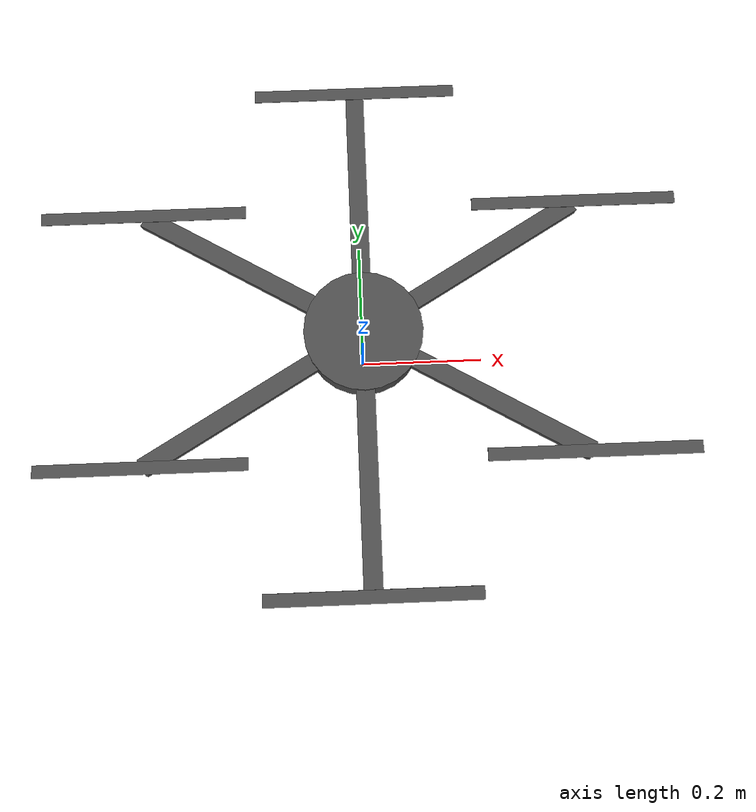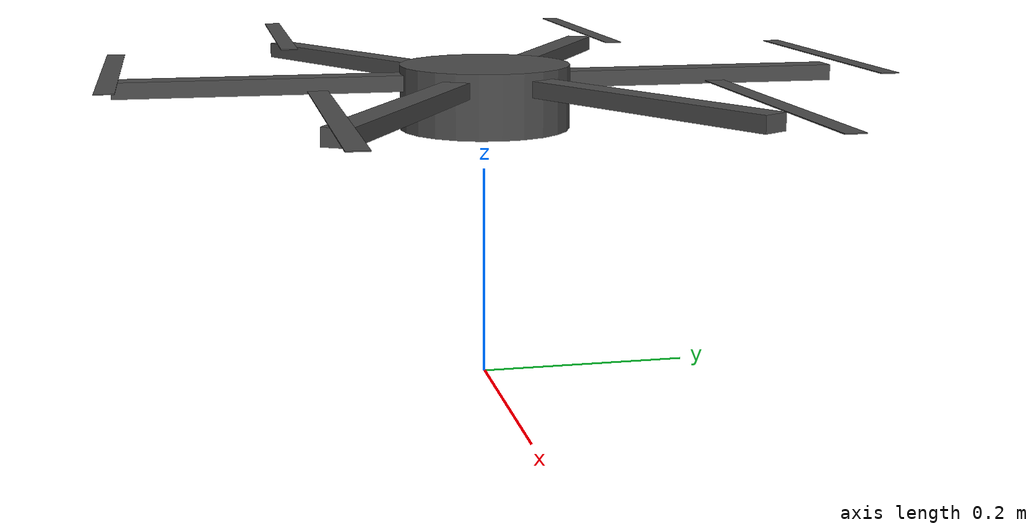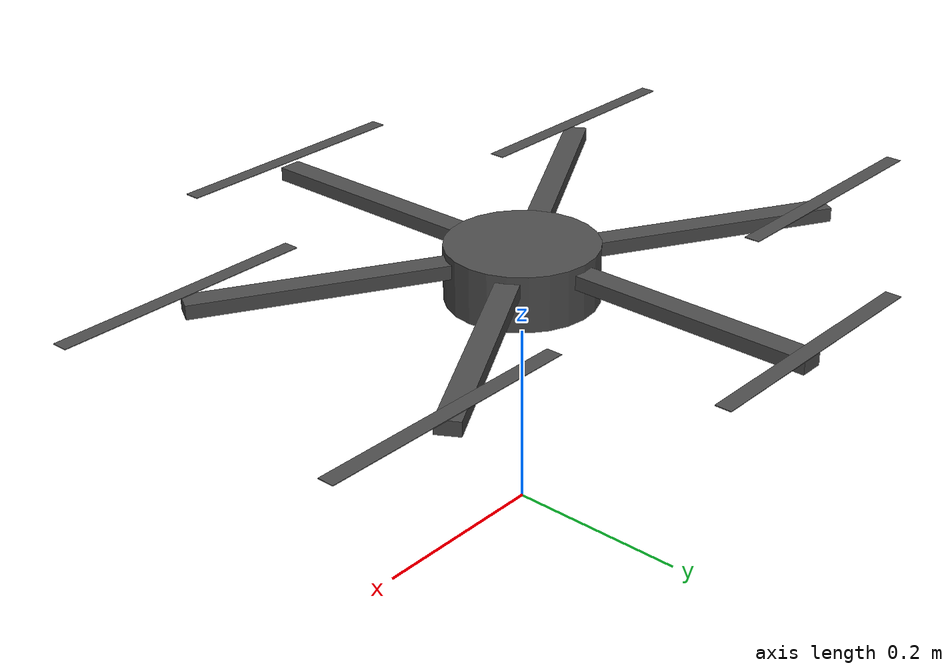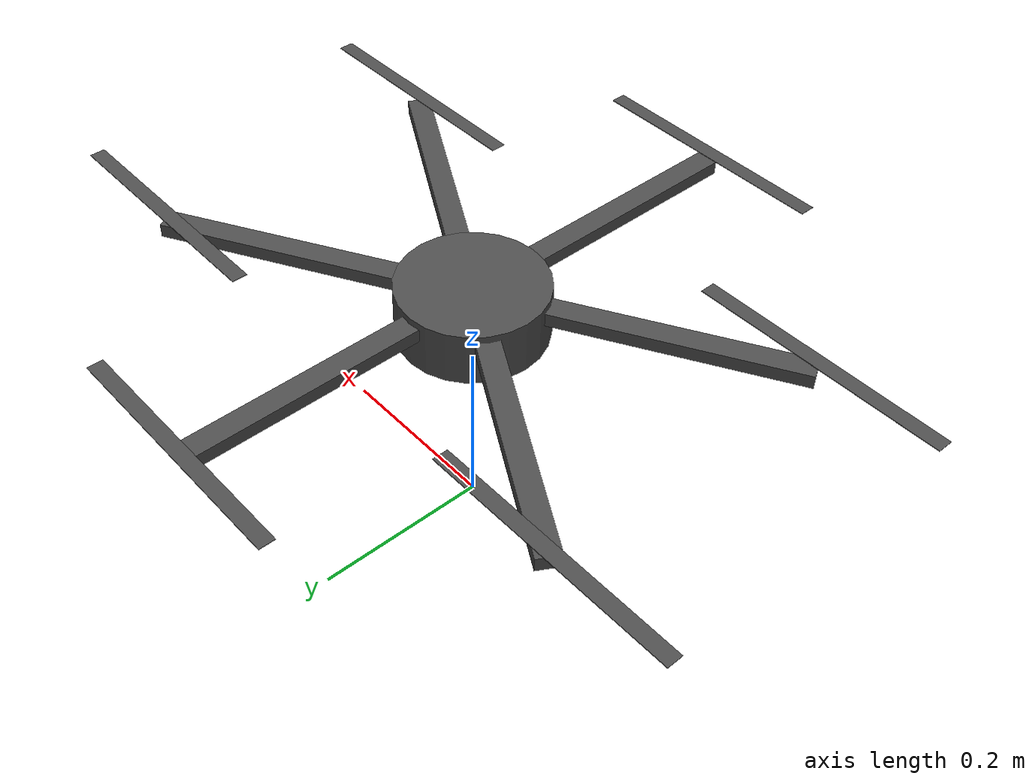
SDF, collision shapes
<?xml version="1.0" encoding="UTF-8"?>
<sdf version='1.9'>
  <model name='hexarotor_x_custom'>
    <include merge='true'>
      <uri>model://hexarotor_x_custom_base</uri>
    </include>

    <!-- motorNumber deve corrispondere a SIM_GZ_EC_FUNCn = 10x -> Motor (x-1)
         nell'airframe 22004_gz_hexarotor_x_custom -->

    <plugin filename="gz-sim-multicopter-motor-model-system"
      name="gz::sim::systems::MulticopterMotorModel">
      <jointName>rotor_0_joint</jointName>
      <linkName>rotor_0</linkName>
      <turningDirection>cw</turningDirection>
      <timeConstantUp>0.0125</timeConstantUp>
      <timeConstantDown>0.025</timeConstantDown>
      <maxRotVelocity>1000.0</maxRotVelocity>
      <motorConstant>8.54858e-06</motorConstant>
      <momentConstant>0.016</momentConstant>
      <commandSubTopic>command/motor_speed</commandSubTopic>
      <motorNumber>0</motorNumber>
      <rotorDragCoefficient>8.06428e-05</rotorDragCoefficient>
      <rollingMomentCoefficient>1e-06</rollingMomentCoefficient>
      <rotorVelocitySlowdownSim>10</rotorVelocitySlowdownSim>
      <motorType>velocity</motorType>
    </plugin>

    <plugin filename="gz-sim-multicopter-motor-model-system"
      name="gz::sim::systems::MulticopterMotorModel">
      <jointName>rotor_1_joint</jointName>
      <linkName>rotor_1</linkName>
      <turningDirection>ccw</turningDirection>
      <timeConstantUp>0.0125</timeConstantUp>
      <timeConstantDown>0.025</timeConstantDown>
      <maxRotVelocity>1000.0</maxRotVelocity>
      <motorConstant>8.54858e-06</motorConstant>
      <momentConstant>0.016</momentConstant>
      <commandSubTopic>command/motor_speed</commandSubTopic>
      <motorNumber>1</motorNumber>
      <rotorDragCoefficient>8.06428e-05</rotorDragCoefficient>
      <rollingMomentCoefficient>1e-06</rollingMomentCoefficient>
      <rotorVelocitySlowdownSim>10</rotorVelocitySlowdownSim>
      <motorType>velocity</motorType>
    </plugin>

    <plugin filename="gz-sim-multicopter-motor-model-system"
      name="gz::sim::systems::MulticopterMotorModel">
      <jointName>rotor_2_joint</jointName>
      <linkName>rotor_2</linkName>
      <turningDirection>cw</turningDirection>
      <timeConstantUp>0.0125</timeConstantUp>
      <timeConstantDown>0.025</timeConstantDown>
      <maxRotVelocity>1000.0</maxRotVelocity>
      <motorConstant>8.54858e-06</motorConstant>
      <momentConstant>0.016</momentConstant>
      <commandSubTopic>command/motor_speed</commandSubTopic>
      <motorNumber>2</motorNumber>
      <rotorDragCoefficient>8.06428e-05</rotorDragCoefficient>
      <rollingMomentCoefficient>1e-06</rollingMomentCoefficient>
      <rotorVelocitySlowdownSim>10</rotorVelocitySlowdownSim>
      <motorType>velocity</motorType>
    </plugin>

    <plugin filename="gz-sim-multicopter-motor-model-system"
      name="gz::sim::systems::MulticopterMotorModel">
      <jointName>rotor_3_joint</jointName>
      <linkName>rotor_3</linkName>
      <turningDirection>ccw</turningDirection>
      <timeConstantUp>0.0125</timeConstantUp>
      <timeConstantDown>0.025</timeConstantDown>
      <maxRotVelocity>1000.0</maxRotVelocity>
      <motorConstant>8.54858e-06</motorConstant>
      <momentConstant>0.016</momentConstant>
      <commandSubTopic>command/motor_speed</commandSubTopic>
      <motorNumber>3</motorNumber>
      <rotorDragCoefficient>8.06428e-05</rotorDragCoefficient>
      <rollingMomentCoefficient>1e-06</rollingMomentCoefficient>
      <rotorVelocitySlowdownSim>10</rotorVelocitySlowdownSim>
      <motorType>velocity</motorType>
    </plugin>

    <plugin filename="gz-sim-multicopter-motor-model-system"
      name="gz::sim::systems::MulticopterMotorModel">
      <jointName>rotor_4_joint</jointName>
      <linkName>rotor_4</linkName>
      <turningDirection>ccw</turningDirection>
      <timeConstantUp>0.0125</timeConstantUp>
      <timeConstantDown>0.025</timeConstantDown>
      <maxRotVelocity>1000.0</maxRotVelocity>
      <motorConstant>8.54858e-06</motorConstant>
      <momentConstant>0.016</momentConstant>
      <commandSubTopic>command/motor_speed</commandSubTopic>
      <motorNumber>4</motorNumber>
      <rotorDragCoefficient>8.06428e-05</rotorDragCoefficient>
      <rollingMomentCoefficient>1e-06</rollingMomentCoefficient>
      <rotorVelocitySlowdownSim>10</rotorVelocitySlowdownSim>
      <motorType>velocity</motorType>
    </plugin>

    <plugin filename="gz-sim-multicopter-motor-model-system"
      name="gz::sim::systems::MulticopterMotorModel">
      <jointName>rotor_5_joint</jointName>
      <linkName>rotor_5</linkName>
      <turningDirection>cw</turningDirection>
      <timeConstantUp>0.0125</timeConstantUp>
      <timeConstantDown>0.025</timeConstantDown>
      <maxRotVelocity>1000.0</maxRotVelocity>
      <motorConstant>8.54858e-06</motorConstant>
      <momentConstant>0.016</momentConstant>
      <commandSubTopic>command/motor_speed</commandSubTopic>
      <motorNumber>5</motorNumber>
      <rotorDragCoefficient>8.06428e-05</rotorDragCoefficient>
      <rollingMomentCoefficient>1e-06</rollingMomentCoefficient>
      <rotorVelocitySlowdownSim>10</rotorVelocitySlowdownSim>
      <motorType>velocity</motorType>
    </plugin>

  </model>
</sdf>

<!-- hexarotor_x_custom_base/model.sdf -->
<sdf version='1.9'>
  <model name='hexarotor_x_custom_base'>
    <pose>0 0 .24 0 0 0</pose>
    <self_collide>false</self_collide>
    <static>false</static>
    <link name="base_link">
      <inertial>
        <!-- PLACEHOLDER: massa/inerzia dell'x500 (quad), da sostituire con i
             valori reali del FY680 dal tuo modello LaTeX/Simulink -->
        <mass>2.0</mass>
        <inertia>
          <ixx>0.02166666666666667</ixx>
          <ixy>0</ixy>
          <ixz>0</ixz>
          <iyy>0.02166666666666667</iyy>
          <iyz>0</iyz>
          <izz>0.04000000000000001</izz>
        </inertia>
      </inertial>
      <gravity>true</gravity>
      <velocity_decay />
      <visual name="hub_visual">
        <pose>0 0 .03 0 0 0</pose>
        <geometry>
          <cylinder>
            <radius>0.08</radius>
            <length>0.06</length>
          </cylinder>
        </geometry>
        <material>
          <script>
            <name>Gazebo/DarkGrey</name>
            <uri>file://media/materials/scripts/gazebo.material</uri>
          </script>
        </material>
      </visual>
      <collision name="hub_collision">
        <pose>0 0 .03 0 0 0</pose>
        <geometry>
          <cylinder>
            <radius>0.08</radius>
            <length>0.06</length>
          </cylinder>
        </geometry>
        <surface>
          <contact>
            <ode>
              <min_depth>0.001</min_depth>
              <max_vel>0</max_vel>
            </ode>
          </contact>
          <friction>
            <ode />
          </friction>
        </surface>
      </collision>

      <!-- braccio -> rotor_0: centro (0,0) - punta (0, -0.34) -->
      <visual name="arm_0_visual">
        <pose>0 -0.17 .045 0 0 -1.570796</pose>
        <geometry>
          <box>
            <size>0.34 0.025 0.015</size>
          </box>
        </geometry>
        <material>
          <script>
            <name>Gazebo/DarkGrey</name>
            <uri>file://media/materials/scripts/gazebo.material</uri>
          </script>
        </material>
      </visual>
      <collision name="arm_0_collision">
        <pose>0 -0.17 .045 0 0 -1.570796</pose>
        <geometry>
          <box>
            <size>0.34 0.025 0.015</size>
          </box>
        </geometry>
        <surface>
          <contact>
            <ode>
              <min_depth>0.001</min_depth>
              <max_vel>0</max_vel>
            </ode>
          </contact>
          <friction>
            <ode />
          </friction>
        </surface>
      </collision>

      <!-- braccio -> rotor_1: centro (0,0) - punta (0, 0.34) -->
      <visual name="arm_1_visual">
        <pose>0 0.17 .045 0 0 1.570796</pose>
        <geometry>
          <box>
            <size>0.34 0.025 0.015</size>
          </box>
        </geometry>
        <material>
          <script>
            <name>Gazebo/DarkGrey</name>
            <uri>file://media/materials/scripts/gazebo.material</uri>
          </script>
        </material>
      </visual>
      <collision name="arm_1_collision">
        <pose>0 0.17 .045 0 0 1.570796</pose>
        <geometry>
          <box>
            <size>0.34 0.025 0.015</size>
          </box>
        </geometry>
        <surface>
          <contact>
            <ode>
              <min_depth>0.001</min_depth>
              <max_vel>0</max_vel>
            </ode>
          </contact>
          <friction>
            <ode />
          </friction>
        </surface>
      </collision>

      <!-- braccio -> rotor_2: centro (0,0) - punta (0.2944, 0.17) -->
      <visual name="arm_2_visual">
        <pose>0.1472 0.085 .045 0 0 0.523599</pose>
        <geometry>
          <box>
            <size>0.34 0.025 0.015</size>
          </box>
        </geometry>
        <material>
          <script>
            <name>Gazebo/DarkGrey</name>
            <uri>file://media/materials/scripts/gazebo.material</uri>
          </script>
        </material>
      </visual>
      <collision name="arm_2_collision">
        <pose>0.1472 0.085 .045 0 0 0.523599</pose>
        <geometry>
          <box>
            <size>0.34 0.025 0.015</size>
          </box>
        </geometry>
        <surface>
          <contact>
            <ode>
              <min_depth>0.001</min_depth>
              <max_vel>0</max_vel>
            </ode>
          </contact>
          <friction>
            <ode />
          </friction>
        </surface>
      </collision>

      <!-- braccio -> rotor_3: centro (0,0) - punta (-0.2944, -0.17) -->
      <visual name="arm_3_visual">
        <pose>-0.1472 -0.085 .045 0 0 -2.617994</pose>
        <geometry>
          <box>
            <size>0.34 0.025 0.015</size>
          </box>
        </geometry>
        <material>
          <script>
            <name>Gazebo/DarkGrey</name>
            <uri>file://media/materials/scripts/gazebo.material</uri>
          </script>
        </material>
      </visual>
      <collision name="arm_3_collision">
        <pose>-0.1472 -0.085 .045 0 0 -2.617994</pose>
        <geometry>
          <box>
            <size>0.34 0.025 0.015</size>
          </box>
        </geometry>
        <surface>
          <contact>
            <ode>
              <min_depth>0.001</min_depth>
              <max_vel>0</max_vel>
            </ode>
          </contact>
          <friction>
            <ode />
          </friction>
        </surface>
      </collision>

      <!-- braccio -> rotor_4: centro (0,0) - punta (0.2944, -0.17) -->
      <visual name="arm_4_visual">
        <pose>0.1472 -0.085 .045 0 0 -0.523599</pose>
        <geometry>
          <box>
            <size>0.34 0.025 0.015</size>
          </box>
        </geometry>
        <material>
          <script>
            <name>Gazebo/DarkGrey</name>
            <uri>file://media/materials/scripts/gazebo.material</uri>
          </script>
        </material>
      </visual>
      <collision name="arm_4_collision">
        <pose>0.1472 -0.085 .045 0 0 -0.523599</pose>
        <geometry>
          <box>
            <size>0.34 0.025 0.015</size>
          </box>
        </geometry>
        <surface>
          <contact>
            <ode>
              <min_depth>0.001</min_depth>
              <max_vel>0</max_vel>
            </ode>
          </contact>
          <friction>
            <ode />
          </friction>
        </surface>
      </collision>

      <!-- braccio -> rotor_5: centro (0,0) - punta (-0.2944, 0.17) -->
      <visual name="arm_5_visual">
        <pose>-0.1472 0.085 .045 0 0 2.617994</pose>
        <geometry>
          <box>
            <size>0.34 0.025 0.015</size>
          </box>
        </geometry>
        <material>
          <script>
            <name>Gazebo/DarkGrey</name>
            <uri>file://media/materials/scripts/gazebo.material</uri>
          </script>
        </material>
      </visual>
      <collision name="arm_5_collision">
        <pose>-0.1472 0.085 .045 0 0 2.617994</pose>
        <geometry>
          <box>
            <size>0.34 0.025 0.015</size>
          </box>
        </geometry>
        <surface>
          <contact>
            <ode>
              <min_depth>0.001</min_depth>
              <max_vel>0</max_vel>
            </ode>
          </contact>
          <friction>
            <ode />
          </friction>
        </surface>
      </collision>
      <sensor name="air_pressure_sensor" type="air_pressure">
        <gz_frame_id>base_link</gz_frame_id>
        <always_on>1</always_on>
        <update_rate>50</update_rate>
        <air_pressure>
          <pressure>
            <noise type="gaussian">
              <mean>0</mean>
              <stddev>3</stddev>
            </noise>
          </pressure>
        </air_pressure>
      </sensor>
      <sensor name="magnetometer_sensor" type="magnetometer">
        <gz_frame_id>base_link</gz_frame_id>
        <always_on>1</always_on>
        <update_rate>100</update_rate>
        <magnetometer>
          <x>
            <noise type="gaussian">
              <stddev>0.0001</stddev>
            </noise>
          </x>
          <y>
            <noise type="gaussian">
              <stddev>0.0001</stddev>
            </noise>
          </y>
          <z>
            <noise type="gaussian">
              <stddev>0.0001</stddev>
            </noise>
          </z>
        </magnetometer>
      </sensor>
      <sensor name="imu_sensor" type="imu">
        <gz_frame_id>base_link</gz_frame_id>
        <always_on>1</always_on>
        <update_rate>250</update_rate>
        <imu>
          <angular_velocity>
            <x>
              <noise type="gaussian">
                <mean>0.0</mean>
                <stddev>0.0008726646</stddev>
              </noise>
            </x>
            <y>
              <noise type="gaussian">
                <mean>0.0</mean>
                <stddev>0.0008726646</stddev>
              </noise>
            </y>
            <z>
              <noise type="gaussian">
                <mean>0.0</mean>
                <stddev>0.0008726646</stddev>
              </noise>
            </z>
          </angular_velocity>
          <linear_acceleration>
            <x>
              <noise type="gaussian">
                <mean>0.0</mean>
                <stddev>0.00637</stddev>
              </noise>
            </x>
            <y>
              <noise type="gaussian">
                <mean>0.0</mean>
                <stddev>0.00637</stddev>
              </noise>
            </y>
            <z>
              <noise type="gaussian">
                <mean>0.0</mean>
                <stddev>0.00686</stddev>
              </noise>
            </z>
          </linear_acceleration>
        </imu>
      </sensor>
      <sensor name="navsat_sensor" type="navsat">
        <gz_frame_id>base_link</gz_frame_id>
        <always_on>1</always_on>
        <update_rate>30</update_rate>
      </sensor>
    </link>

    <!-- rotor_0: PX4 (0, 0.34), KM<0 -> CW -->
    <link name="rotor_0">
      <gravity>true</gravity>
      <self_collide>false</self_collide>
      <velocity_decay />
      <pose>0 -0.34 0.06 0 0 0</pose>
      <inertial>
        <mass>0.016076923076923075</mass>
        <inertia>
          <ixx>3.8464910483993325e-07</ixx>
          <iyy>2.6115851691700804e-05</iyy>
          <izz>2.649858234714004e-05</izz>
        </inertia>
      </inertial>
      <visual name="rotor_0_visual">
        <pose>-0.022 -0.14638461538461536 -0.016 0 0 0</pose>
        <geometry>
          <mesh>
            <scale>0.8461538461538461 0.8461538461538461 0.8461538461538461</scale>
            <uri>model://hexarotor_x_custom_base/meshes/1345_prop_cw.stl</uri>
          </mesh>
        </geometry>
        <material>
          <script>
            <name>Gazebo/DarkGrey</name>
            <uri>file://media/materials/scripts/gazebo.material</uri>
          </script>
        </material>
      </visual>
      <visual name="rotor_0_visual_motor_bell">
        <pose>0 0 -.032 0 0 0</pose>
        <geometry>
          <mesh>
            <scale>1 1 1</scale>
            <uri>model://hexarotor_x_custom_base/meshes/5010Bell.dae</uri>
          </mesh>
        </geometry>
      </visual>
      <collision name="rotor_0_collision">
        <pose>0 0 0 0 0 0 </pose>
        <geometry>
          <box>
            <size>0.2792307692307692 0.016923076923076923 0.0008461538461538462</size>
          </box>
        </geometry>
        <surface>
          <contact>
            <ode>
              <min_depth>0.001</min_depth>
              <max_vel>0</max_vel>
            </ode>
          </contact>
          <friction>
            <ode />
          </friction>
        </surface>
      </collision>
    </link>
    <joint name="rotor_0_joint" type="revolute">
      <parent>base_link</parent>
      <child>rotor_0</child>
      <axis>
        <xyz>0 0 1</xyz>
        <limit>
          <lower>-1e+16</lower>
          <upper>1e+16</upper>
        </limit>
        <dynamics>
          <spring_reference>0</spring_reference>
          <spring_stiffness>0</spring_stiffness>
        </dynamics>
      </axis>
    </joint>

    <!-- rotor_1: PX4 (0, -0.34), KM>0 -> CCW -->
    <link name="rotor_1">
      <gravity>true</gravity>
      <self_collide>false</self_collide>
      <velocity_decay />
      <pose>0 0.34 0.06 0 0 0</pose>
      <inertial>
        <mass>0.016076923076923075</mass>
        <inertia>
          <ixx>3.8464910483993325e-07</ixx>
          <iyy>2.6115851691700804e-05</iyy>
          <izz>2.649858234714004e-05</izz>
        </inertia>
      </inertial>
      <visual name="rotor_1_visual">
        <pose>-0.022 -0.14638461538461536 -0.016 0 0 0</pose>
        <geometry>
          <mesh>
            <scale>0.8461538461538461 0.8461538461538461 0.8461538461538461</scale>
            <uri>model://hexarotor_x_custom_base/meshes/1345_prop_ccw.stl</uri>
          </mesh>
        </geometry>
        <material>
          <script>
            <name>Gazebo/DarkGrey</name>
            <uri>file://media/materials/scripts/gazebo.material</uri>
          </script>
        </material>
      </visual>
      <visual name="rotor_1_visual_motor_bell">
        <pose>0 0 -.032 0 0 0</pose>
        <geometry>
          <mesh>
            <scale>1 1 1</scale>
            <uri>model://hexarotor_x_custom_base/meshes/5010Bell.dae</uri>
          </mesh>
        </geometry>
      </visual>
      <collision name="rotor_1_collision">
        <pose>0 0 0 0 0 0 </pose>
        <geometry>
          <box>
            <size>0.2792307692307692 0.016923076923076923 0.0008461538461538462</size>
          </box>
        </geometry>
        <surface>
          <contact>
            <ode>
              <min_depth>0.001</min_depth>
              <max_vel>0</max_vel>
            </ode>
          </contact>
          <friction>
            <ode />
          </friction>
        </surface>
      </collision>
    </link>
    <joint name="rotor_1_joint" type="revolute">
      <parent>base_link</parent>
      <child>rotor_1</child>
      <axis>
        <xyz>0 0 1</xyz>
        <limit>
          <lower>-1e+16</lower>
          <upper>1e+16</upper>
        </limit>
        <dynamics>
          <spring_reference>0</spring_reference>
          <spring_stiffness>0</spring_stiffness>
        </dynamics>
      </axis>
    </joint>

    <!-- rotor_2: PX4 (0.2944, -0.17), KM<0 -> CW -->
    <link name="rotor_2">
      <gravity>true</gravity>
      <self_collide>false</self_collide>
      <velocity_decay />
      <pose>0.2944 0.17 0.06 0 0 0</pose>
      <inertial>
        <mass>0.016076923076923075</mass>
        <inertia>
          <ixx>3.8464910483993325e-07</ixx>
          <iyy>2.6115851691700804e-05</iyy>
          <izz>2.649858234714004e-05</izz>
        </inertia>
      </inertial>
      <visual name="rotor_2_visual">
        <pose>-0.022 -0.14638461538461536 -0.016 0 0 0</pose>
        <geometry>
          <mesh>
            <scale>0.8461538461538461 0.8461538461538461 0.8461538461538461</scale>
            <uri>model://hexarotor_x_custom_base/meshes/1345_prop_cw.stl</uri>
          </mesh>
        </geometry>
        <material>
          <script>
            <name>Gazebo/DarkGrey</name>
            <uri>file://media/materials/scripts/gazebo.material</uri>
          </script>
        </material>
      </visual>
      <visual name="rotor_2_visual_motor_bell">
        <pose>0 0 -.032 0 0 0</pose>
        <geometry>
          <mesh>
            <scale>1 1 1</scale>
            <uri>model://hexarotor_x_custom_base/meshes/5010Bell.dae</uri>
          </mesh>
        </geometry>
      </visual>
      <collision name="rotor_2_collision">
        <pose>0 0 0 0 0 0 </pose>
        <geometry>
          <box>
            <size>0.2792307692307692 0.016923076923076923 0.0008461538461538462</size>
          </box>
        </geometry>
        <surface>
          <contact>
            <ode>
              <min_depth>0.001</min_depth>
              <max_vel>0</max_vel>
            </ode>
          </contact>
          <friction>
            <ode />
          </friction>
        </surface>
      </collision>
    </link>
    <joint name="rotor_2_joint" type="revolute">
      <parent>base_link</parent>
      <child>rotor_2</child>
      <axis>
        <xyz>0 0 1</xyz>
        <limit>
          <lower>-1e+16</lower>
          <upper>1e+16</upper>
        </limit>
        <dynamics>
          <spring_reference>0</spring_reference>
          <spring_stiffness>0</spring_stiffness>
        </dynamics>
      </axis>
    </joint>

    <!-- rotor_3: PX4 (-0.2944, 0.17), KM>0 -> CCW -->
    <link name="rotor_3">
      <gravity>true</gravity>
      <self_collide>false</self_collide>
      <velocity_decay />
      <pose>-0.2944 -0.17 0.06 0 0 0</pose>
      <inertial>
        <mass>0.016076923076923075</mass>
        <inertia>
          <ixx>3.8464910483993325e-07</ixx>
          <iyy>2.6115851691700804e-05</iyy>
          <izz>2.649858234714004e-05</izz>
        </inertia>
      </inertial>
      <visual name="rotor_3_visual">
        <pose>-0.022 -0.14638461538461536 -0.016 0 0 0</pose>
        <geometry>
          <mesh>
            <scale>0.8461538461538461 0.8461538461538461 0.8461538461538461</scale>
            <uri>model://hexarotor_x_custom_base/meshes/1345_prop_ccw.stl</uri>
          </mesh>
        </geometry>
        <material>
          <script>
            <name>Gazebo/DarkGrey</name>
            <uri>file://media/materials/scripts/gazebo.material</uri>
          </script>
        </material>
      </visual>
      <visual name="rotor_3_visual_motor_bell">
        <pose>0 0 -.032 0 0 0</pose>
        <geometry>
          <mesh>
            <scale>1 1 1</scale>
            <uri>model://hexarotor_x_custom_base/meshes/5010Bell.dae</uri>
          </mesh>
        </geometry>
      </visual>
      <collision name="rotor_3_collision">
        <pose>0 0 0 0 0 0 </pose>
        <geometry>
          <box>
            <size>0.2792307692307692 0.016923076923076923 0.0008461538461538462</size>
          </box>
        </geometry>
        <surface>
          <contact>
            <ode>
              <min_depth>0.001</min_depth>
              <max_vel>0</max_vel>
            </ode>
          </contact>
          <friction>
            <ode />
          </friction>
        </surface>
      </collision>
    </link>
    <joint name="rotor_3_joint" type="revolute">
      <parent>base_link</parent>
      <child>rotor_3</child>
      <axis>
        <xyz>0 0 1</xyz>
        <limit>
          <lower>-1e+16</lower>
          <upper>1e+16</upper>
        </limit>
        <dynamics>
          <spring_reference>0</spring_reference>
          <spring_stiffness>0</spring_stiffness>
        </dynamics>
      </axis>
    </joint>

    <!-- rotor_4: PX4 (0.2944, 0.17), KM>0 -> CCW -->
    <link name="rotor_4">
      <gravity>true</gravity>
      <self_collide>false</self_collide>
      <velocity_decay />
      <pose>0.2944 -0.17 0.06 0 0 0</pose>
      <inertial>
        <mass>0.016076923076923075</mass>
        <inertia>
          <ixx>3.8464910483993325e-07</ixx>
          <iyy>2.6115851691700804e-05</iyy>
          <izz>2.649858234714004e-05</izz>
        </inertia>
      </inertial>
      <visual name="rotor_4_visual">
        <pose>-0.022 -0.14638461538461536 -0.016 0 0 0</pose>
        <geometry>
          <mesh>
            <scale>0.8461538461538461 0.8461538461538461 0.8461538461538461</scale>
            <uri>model://hexarotor_x_custom_base/meshes/1345_prop_ccw.stl</uri>
          </mesh>
        </geometry>
        <material>
          <script>
            <name>Gazebo/DarkGrey</name>
            <uri>file://media/materials/scripts/gazebo.material</uri>
          </script>
        </material>
      </visual>
      <visual name="rotor_4_visual_motor_bell">
        <pose>0 0 -.032 0 0 0</pose>
        <geometry>
          <mesh>
            <scale>1 1 1</scale>
            <uri>model://hexarotor_x_custom_base/meshes/5010Bell.dae</uri>
          </mesh>
        </geometry>
      </visual>
      <collision name="rotor_4_collision">
        <pose>0 0 0 0 0 0 </pose>
        <geometry>
          <box>
            <size>0.2792307692307692 0.016923076923076923 0.0008461538461538462</size>
          </box>
        </geometry>
        <surface>
          <contact>
            <ode>
              <min_depth>0.001</min_depth>
              <max_vel>0</max_vel>
            </ode>
          </contact>
          <friction>
            <ode />
          </friction>
        </surface>
      </collision>
    </link>
    <joint name="rotor_4_joint" type="revolute">
      <parent>base_link</parent>
      <child>rotor_4</child>
      <axis>
        <xyz>0 0 1</xyz>
        <limit>
          <lower>-1e+16</lower>
          <upper>1e+16</upper>
        </limit>
        <dynamics>
          <spring_reference>0</spring_reference>
          <spring_stiffness>0</spring_stiffness>
        </dynamics>
      </axis>
    </joint>

    <!-- rotor_5: PX4 (-0.2944, -0.17), KM<0 -> CW -->
    <link name="rotor_5">
      <gravity>true</gravity>
      <self_collide>false</self_collide>
      <velocity_decay />
      <pose>-0.2944 0.17 0.06 0 0 0</pose>
      <inertial>
        <mass>0.016076923076923075</mass>
        <inertia>
          <ixx>3.8464910483993325e-07</ixx>
          <iyy>2.6115851691700804e-05</iyy>
          <izz>2.649858234714004e-05</izz>
        </inertia>
      </inertial>
      <visual name="rotor_5_visual">
        <pose>-0.022 -0.14638461538461536 -0.016 0 0 0</pose>
        <geometry>
          <mesh>
            <scale>0.8461538461538461 0.8461538461538461 0.8461538461538461</scale>
            <uri>model://hexarotor_x_custom_base/meshes/1345_prop_cw.stl</uri>
          </mesh>
        </geometry>
        <material>
          <script>
            <name>Gazebo/DarkGrey</name>
            <uri>file://media/materials/scripts/gazebo.material</uri>
          </script>
        </material>
      </visual>
      <visual name="rotor_5_visual_motor_bell">
        <pose>0 0 -.032 0 0 0</pose>
        <geometry>
          <mesh>
            <scale>1 1 1</scale>
            <uri>model://hexarotor_x_custom_base/meshes/5010Bell.dae</uri>
          </mesh>
        </geometry>
      </visual>
      <collision name="rotor_5_collision">
        <pose>0 0 0 0 0 0 </pose>
        <geometry>
          <box>
            <size>0.2792307692307692 0.016923076923076923 0.0008461538461538462</size>
          </box>
        </geometry>
        <surface>
          <contact>
            <ode>
              <min_depth>0.001</min_depth>
              <max_vel>0</max_vel>
            </ode>
          </contact>
          <friction>
            <ode />
          </friction>
        </surface>
      </collision>
    </link>
    <joint name="rotor_5_joint" type="revolute">
      <parent>base_link</parent>
      <child>rotor_5</child>
      <axis>
        <xyz>0 0 1</xyz>
        <limit>
          <lower>-1e+16</lower>
          <upper>1e+16</upper>
        </limit>
        <dynamics>
          <spring_reference>0</spring_reference>
          <spring_stiffness>0</spring_stiffness>
        </dynamics>
      </axis>
    </joint>

  </model>
</sdf>
